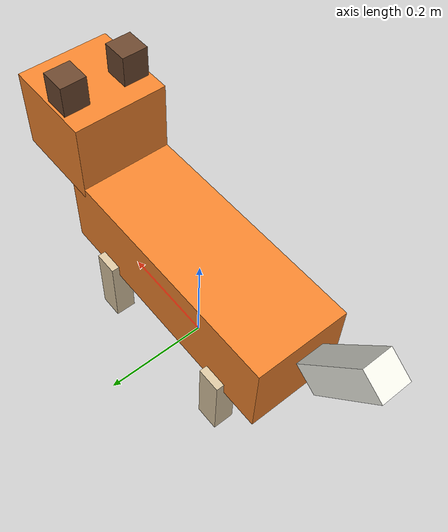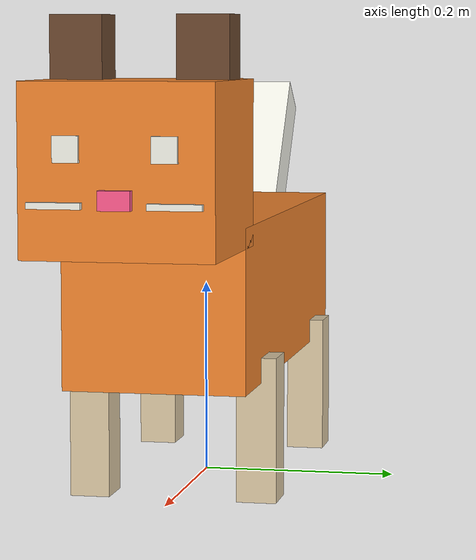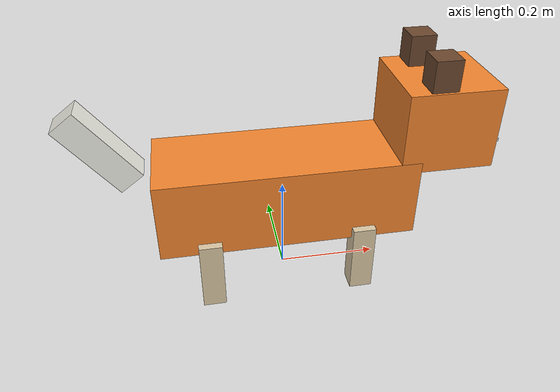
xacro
<?xml version="1.0"?>
<robot xmlns:xacro="http://www.ros.org/wiki/xacro" name="loaf_cat_robot">
  <xacro:arg name="use_ros2_control" default="true"/>

  <xacro:property name="base_length" value="0.26"/>
  <xacro:property name="base_width" value="0.10"/>
  <xacro:property name="base_height" value="0.04"/>
  <xacro:macro name="box_inertia" params="mass x y z">
    <inertial>
      <mass value="${mass}"/>
      <origin xyz="0 0 0" rpy="0 0 0"/>
      <inertia
        ixx="${mass * (y*y + z*z) / 12.0}" ixy="0" ixz="0"
        iyy="${mass * (x*x + z*z) / 12.0}" iyz="0"
        izz="${mass * (x*x + y*y) / 12.0}"/>
    </inertial>
  </xacro:macro>

  <xacro:macro name="sphere_inertia" params="mass radius">
    <inertial>
      <mass value="${mass}"/>
      <origin xyz="0 0 0" rpy="0 0 0"/>
      <inertia
        ixx="${2.0 * mass * radius * radius / 5.0}" ixy="0" ixz="0"
        iyy="${2.0 * mass * radius * radius / 5.0}" iyz="0"
        izz="${2.0 * mass * radius * radius / 5.0}"/>
    </inertial>
  </xacro:macro>

  <xacro:macro name="cylinder_inertia" params="mass radius length">
    <inertial>
      <mass value="${mass}"/>
      <origin xyz="0 0 0" rpy="0 0 0"/>
      <inertia
        ixx="${mass * (3.0 * radius * radius + length * length) / 12.0}" ixy="0" ixz="0"
        iyy="${mass * (3.0 * radius * radius + length * length) / 12.0}" iyz="0"
        izz="${mass * radius * radius / 2.0}"/>
    </inertial>
  </xacro:macro>

  <xacro:macro name="cat_leg" params="prefix x y fold_sign">
    <link name="${prefix}_leg_link">
      <visual>
        <origin xyz="0 0 -0.0725" rpy="0 0 0"/>
        <geometry>
          <box size="0.045 0.04 0.145"/>
        </geometry>
        <material name="leg_cream">
          <color rgba="0.86 0.78 0.64 1.0"/>
        </material>
      </visual>
      <xacro:box_inertia mass="0.08" x="0.045" y="0.04" z="0.145"/>
    </link>

    <joint name="${prefix}_hip_joint" type="revolute">
      <parent link="body_link"/>
      <child link="${prefix}_leg_link"/>
      <origin xyz="${x} ${y} -0.055" rpy="0 0 0"/>
      <axis xyz="0 1 0"/>
      <limit lower="-1.57" upper="1.57" effort="4.0" velocity="4.0"/>
    </joint>

  </xacro:macro>

  <xacro:macro name="face_marking" params="name xyz size material rgba">
    <link name="${name}_link">
      <visual>
        <origin xyz="0 0 0" rpy="0 0 0"/>
        <geometry>
          <box size="${size}"/>
        </geometry>
        <material name="${material}">
          <color rgba="${rgba}"/>
        </material>
      </visual>
      <xacro:box_inertia mass="0.002" x="0.006" y="0.024" z="0.024"/>
    </link>

    <joint name="${name}_joint" type="fixed">
      <parent link="head_link"/>
      <child link="${name}_link"/>
      <origin xyz="${xyz}" rpy="0 0 0"/>
    </joint>
  </xacro:macro>

  <link name="base_footprint"/>

  <joint name="base_footprint_joint" type="fixed">
    <parent link="base_footprint"/>
    <child link="base_link"/>
    <origin xyz="0 0 0.02" rpy="0 0 0"/>
  </joint>

  <link name="base_link">
    <collision>
      <origin xyz="0 0 0" rpy="0 0 0"/>
      <geometry>
        <box size="${base_length} ${base_width} ${base_height}"/>
      </geometry>
    </collision>
    <xacro:box_inertia mass="2.2" x="${base_length}" y="${base_width}" z="${base_height}"/>
  </link>

  <link name="body_link">
    <visual>
      <origin xyz="0 0 0" rpy="0 0 0"/>
      <geometry>
        <box size="0.50 0.18 0.16"/>
      </geometry>
      <material name="body_tan">
        <color rgba="0.95 0.52 0.18 1.0"/>
      </material>
    </visual>
    <collision>
      <origin xyz="0 0 0" rpy="0 0 0"/>
      <geometry>
        <box size="0.46 0.16 0.14"/>
      </geometry>
    </collision>
    <xacro:box_inertia mass="1.25" x="0.50" y="0.18" z="0.16"/>
  </link>

  <joint name="body_lift_joint" type="prismatic">
    <parent link="base_link"/>
    <child link="body_link"/>
    <origin xyz="0 0 0.18" rpy="0 0 0"/>
    <axis xyz="0 0 1"/>
    <limit lower="-0.12" upper="0.0" effort="60.0" velocity="1.5"/>
    <dynamics damping="20.0" friction="5.0"/>
  </joint>

  <link name="head_link">
    <visual>
      <origin xyz="0 0 0" rpy="0 0 0"/>
      <geometry>
        <box size="0.18 0.18 0.16"/>
      </geometry>
      <material name="head_tan">
        <color rgba="0.95 0.52 0.18 1.0"/>
      </material>
    </visual>
    <xacro:box_inertia mass="0.28" x="0.18" y="0.18" z="0.16"/>
  </link>

  <joint name="head_joint" type="fixed">
    <parent link="body_link"/>
    <child link="head_link"/>
    <origin xyz="0.30 0 0.14" rpy="0 0 0"/>
  </joint>

  <xacro:face_marking name="left_eye" xyz="0.091 0.045 0.02" size="0.006 0.024 0.024" material="marking_white" rgba="0.96 0.96 0.92 1.0"/>
  <xacro:face_marking name="right_eye" xyz="0.091 -0.045 0.02" size="0.006 0.024 0.024" material="marking_white" rgba="0.96 0.96 0.92 1.0"/>
  <xacro:face_marking name="nose" xyz="0.094 0 -0.025" size="0.008 0.030 0.018" material="nose_pink" rgba="1.0 0.35 0.55 1.0"/>
  <xacro:face_marking name="left_whisker" xyz="0.096 0.055 -0.030" size="0.006 0.050 0.006" material="marking_white" rgba="0.96 0.96 0.92 1.0"/>
  <xacro:face_marking name="right_whisker" xyz="0.096 -0.055 -0.030" size="0.006 0.050 0.006" material="marking_white" rgba="0.96 0.96 0.92 1.0"/>

  <link name="left_ear_link">
    <visual>
      <origin xyz="0 0 0.025" rpy="0 0 0"/>
      <geometry>
        <box size="0.05 0.05 0.06"/>
      </geometry>
      <material name="ear_dark">
        <color rgba="0.42 0.28 0.18 1.0"/>
      </material>
    </visual>
    <xacro:box_inertia mass="0.02" x="0.05" y="0.05" z="0.06"/>
  </link>

  <joint name="left_ear_joint" type="fixed">
    <parent link="head_link"/>
    <child link="left_ear_link"/>
    <origin xyz="-0.025 0.060 0.085" rpy="0 0 0"/>
  </joint>

  <link name="right_ear_link">
    <visual>
      <origin xyz="0 0 0.025" rpy="0 0 0"/>
      <geometry>
        <box size="0.05 0.05 0.06"/>
      </geometry>
      <material name="ear_dark">
        <color rgba="0.42 0.28 0.18 1.0"/>
      </material>
    </visual>
    <xacro:box_inertia mass="0.02" x="0.05" y="0.05" z="0.06"/>
  </link>

  <joint name="right_ear_joint" type="fixed">
    <parent link="head_link"/>
    <child link="right_ear_link"/>
    <origin xyz="-0.025 -0.060 0.085" rpy="0 0 0"/>
  </joint>

  <link name="tail_link">
    <visual>
      <origin xyz="0 0 0.085" rpy="0 0 0"/>
      <geometry>
        <box size="0.055 0.055 0.17"/>
      </geometry>
      <material name="marking_white"/>
    </visual>
    <collision>
      <origin xyz="0 0 0.085" rpy="0 0 0"/>
      <geometry>
        <box size="0.05 0.05 0.16"/>
      </geometry>
    </collision>
    <xacro:box_inertia mass="0.08" x="0.055" y="0.055" z="0.17"/>
  </link>

  <joint name="tail_joint" type="fixed">
    <parent link="body_link"/>
    <child link="tail_link"/>
    <origin xyz="-0.285 0 0.055" rpy="0 -0.65 0"/>
  </joint>

  <xacro:cat_leg prefix="front_left" x="0.145" y="0.085" fold_sign="1"/>
  <xacro:cat_leg prefix="front_right" x="0.145" y="-0.085" fold_sign="1"/>
  <xacro:cat_leg prefix="rear_left" x="-0.155" y="0.085" fold_sign="-1"/>
  <xacro:cat_leg prefix="rear_right" x="-0.155" y="-0.085" fold_sign="-1"/>

  <gazebo reference="base_link">
    <material>Gazebo/Black</material>
  </gazebo>
  <gazebo reference="body_link">
    <material>Gazebo/Wood</material>
    <kinematic>true</kinematic>
  </gazebo>
  <gazebo reference="head_link">
    <material>Gazebo/Wood</material>
    <kinematic>true</kinematic>
  </gazebo>
  <gazebo reference="left_ear_link">
    <kinematic>true</kinematic>
  </gazebo>
  <gazebo reference="right_ear_link">
    <kinematic>true</kinematic>
  </gazebo>
  <gazebo reference="tail_link">
    <material>Gazebo/Wood</material>
    <kinematic>true</kinematic>
  </gazebo>
  <gazebo reference="left_eye_link">
    <material>Gazebo/Yellow</material>
    <kinematic>true</kinematic>
  </gazebo>
  <gazebo reference="right_eye_link">
    <material>Gazebo/Yellow</material>
    <kinematic>true</kinematic>
  </gazebo>
  <gazebo reference="nose_link">
    <material>Cat/Pink</material>
    <kinematic>true</kinematic>
  </gazebo>
  <gazebo reference="left_whisker_link">
    <material>Gazebo/White</material>
    <kinematic>true</kinematic>
  </gazebo>
  <gazebo reference="right_whisker_link">
    <material>Gazebo/White</material>
    <kinematic>true</kinematic>
  </gazebo>
  <gazebo reference="front_left_leg_link">
    <kinematic>true</kinematic>
  </gazebo>
  <gazebo reference="front_right_leg_link">
    <kinematic>true</kinematic>
  </gazebo>
  <gazebo reference="rear_left_leg_link">
    <kinematic>true</kinematic>
  </gazebo>
  <gazebo reference="rear_right_leg_link">
    <kinematic>true</kinematic>
  </gazebo>
  <gazebo>
    <plugin name="cat_planar_move" filename="libgazebo_ros_planar_move.so">
      <ros>
        <remapping>cmd_vel:=/diff_drive_controller/cmd_vel_unstamped</remapping>
        <remapping>odom:=/odom</remapping>
      </ros>
      <update_rate>100</update_rate>
      <publish_rate>50</publish_rate>
      <publish_odom>true</publish_odom>
      <publish_odom_tf>true</publish_odom_tf>
      <odometry_frame>odom</odometry_frame>
      <robot_base_frame>base_link</robot_base_frame>
      <covariance_x>0.0001</covariance_x>
      <covariance_y>0.0001</covariance_y>
      <covariance_yaw>0.01</covariance_yaw>
    </plugin>
  </gazebo>

  <xacro:if value="$(arg use_ros2_control)">
    <ros2_control name="GazeboSystem" type="system">
      <hardware>
        <plugin>gazebo_ros2_control/GazeboSystem</plugin>
      </hardware>
      <joint name="body_lift_joint">
        <command_interface name="position"/>
        <state_interface name="position"/>
        <state_interface name="velocity"/>
      </joint>
      <joint name="front_left_hip_joint">
        <command_interface name="position"/>
        <state_interface name="position"/>
        <state_interface name="velocity"/>
      </joint>
      <joint name="front_right_hip_joint">
        <command_interface name="position"/>
        <state_interface name="position"/>
        <state_interface name="velocity"/>
      </joint>
      <joint name="rear_left_hip_joint">
        <command_interface name="position"/>
        <state_interface name="position"/>
        <state_interface name="velocity"/>
      </joint>
      <joint name="rear_right_hip_joint">
        <command_interface name="position"/>
        <state_interface name="position"/>
        <state_interface name="velocity"/>
      </joint>
    </ros2_control>

    <gazebo>
      <plugin filename="libgazebo_ros2_control.so" name="gazebo_ros2_control">
        <parameters>$(find description)/config/ros2_controllers.yaml</parameters>
      </plugin>
    </gazebo>
  </xacro:if>
</robot>
